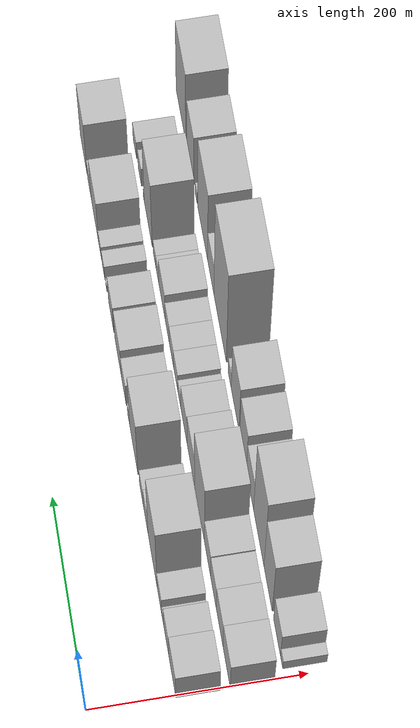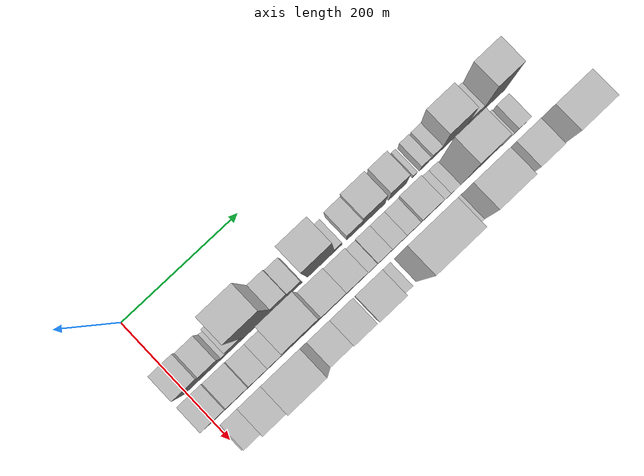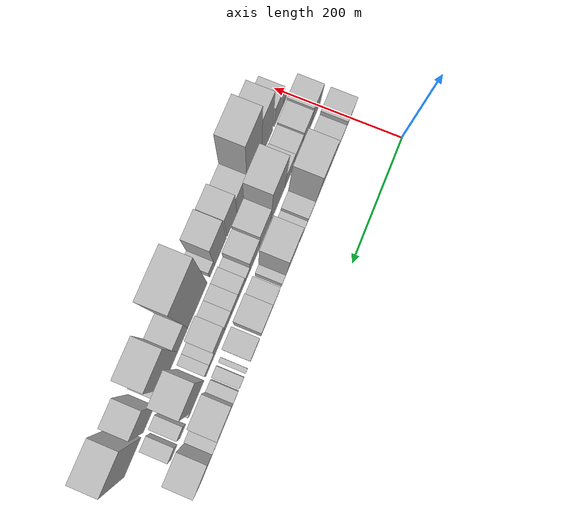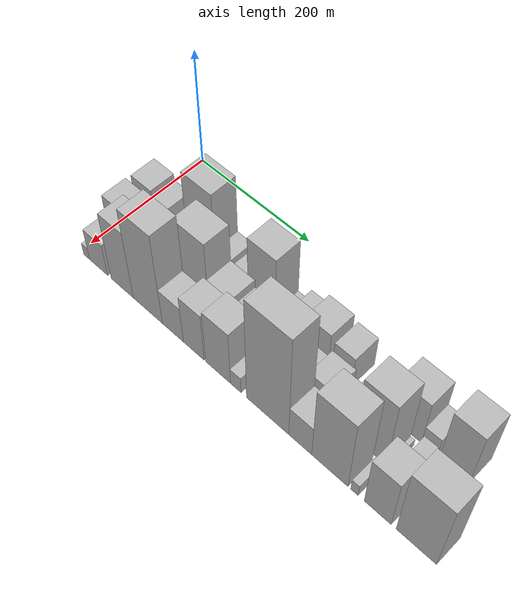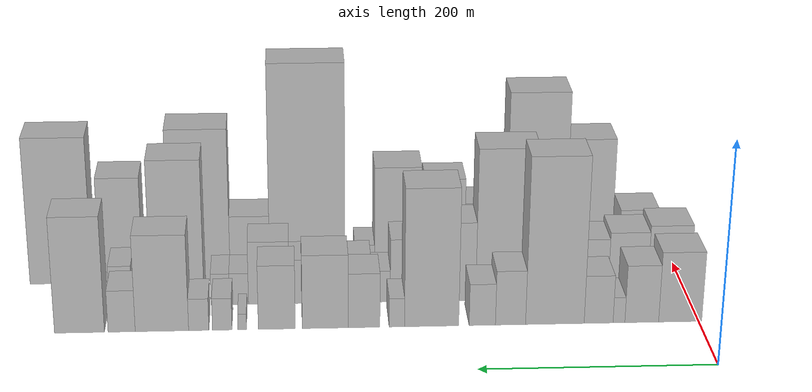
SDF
<sdf version="1.6">
 <world name="default">
  <model name="building_18">
   <static>1</static>
   <pose>100.0000 16.3628 0 0.000000 0.000000 0.000000</pose>
   <link name="link">
    <pose>0 0 33.00 0 0 0</pose>
    <collision name="collision"><geometry><box><size>40.0000 37.6113 66.0000</size></box></geometry></collision>
    <visual name="visual">
     <cast_shadows>0</cast_shadows>
     <geometry><box><size>40.0000 37.6113 66.0000</size></box></geometry>
     <material>
      <script>
       <uri>model://HANNAS_wall/materials/scripts</uri>
       <uri>model://HANNAS_wall/materials/textures</uri>
       <name>vrc/HANNAS_wall</name>
      </script>
     </material>
    </visual>
   </link>
  </model>
  <model name="building_19">
   <static>1</static>
   <pose>100.0000 49.8645 0 0.000000 0.000000 0.000000</pose>
   <link name="link">
    <pose>0 0 27.00 0 0 0</pose>
    <collision name="collision"><geometry><box><size>40.0000 29.3922 54.0000</size></box></geometry></collision>
    <visual name="visual">
     <cast_shadows>0</cast_shadows>
     <geometry><box><size>40.0000 29.3922 54.0000</size></box></geometry>
     <material>
      <script>
       <uri>model://HANNAS_wall/materials/scripts</uri>
       <uri>model://HANNAS_wall/materials/textures</uri>
       <name>vrc/HANNAS_wall</name>
      </script>
     </material>
    </visual>
   </link>
  </model>
  <model name="building_20">
   <static>1</static>
   <pose>100.0000 69.6994 0 0.000000 0.000000 0.000000</pose>
   <link name="link">
    <pose>0 0 12.00 0 0 0</pose>
    <collision name="collision"><geometry><box><size>40.0000 10.2777 24.0000</size></box></geometry></collision>
    <visual name="visual">
     <cast_shadows>0</cast_shadows>
     <geometry><box><size>40.0000 10.2777 24.0000</size></box></geometry>
     <material>
      <script>
       <uri>model://HANNAS_wall/materials/scripts</uri>
       <uri>model://HANNAS_wall/materials/textures</uri>
       <name>vrc/HANNAS_wall</name>
      </script>
     </material>
    </visual>
   </link>
  </model>
  <model name="building_21">
   <static>1</static>
   <pose>100.0000 87.3972 0 0.000000 0.000000 0.000000</pose>
   <link name="link">
    <pose>0 0 22.50 0 0 0</pose>
    <collision name="collision"><geometry><box><size>40.0000 25.1180 45.0000</size></box></geometry></collision>
    <visual name="visual">
     <cast_shadows>0</cast_shadows>
     <geometry><box><size>40.0000 25.1180 45.0000</size></box></geometry>
     <material>
      <script>
       <uri>model://HANNAS_wall/materials/scripts</uri>
       <uri>model://HANNAS_wall/materials/textures</uri>
       <name>vrc/HANNAS_wall</name>
      </script>
     </material>
    </visual>
   </link>
  </model>
  <model name="building_22">
   <static>1</static>
   <pose>100.0000 125.3921 0 0.000000 0.000000 0.000000</pose>
   <link name="link">
    <pose>0 0 78.00 0 0 0</pose>
    <collision name="collision"><geometry><box><size>40.0000 50.8718 156.0000</size></box></geometry></collision>
    <visual name="visual">
     <cast_shadows>0</cast_shadows>
     <geometry><box><size>40.0000 50.8718 156.0000</size></box></geometry>
     <material>
      <script>
       <uri>model://HANNAS_wall/materials/scripts</uri>
       <uri>model://HANNAS_wall/materials/textures</uri>
       <name>vrc/HANNAS_wall</name>
      </script>
     </material>
    </visual>
   </link>
  </model>
  <model name="building_23">
   <static>1</static>
   <pose>100.0000 163.8808 0 0.000000 0.000000 0.000000</pose>
   <link name="link">
    <pose>0 0 25.50 0 0 0</pose>
    <collision name="collision"><geometry><box><size>40.0000 26.1055 51.0000</size></box></geometry></collision>
    <visual name="visual">
     <cast_shadows>0</cast_shadows>
     <geometry><box><size>40.0000 26.1055 51.0000</size></box></geometry>
     <material>
      <script>
       <uri>model://HANNAS_wall/materials/scripts</uri>
       <uri>model://HANNAS_wall/materials/textures</uri>
       <name>vrc/HANNAS_wall</name>
      </script>
     </material>
    </visual>
   </link>
  </model>
  <model name="building_24">
   <static>1</static>
   <pose>100.0000 188.3058 0 0.000000 0.000000 0.000000</pose>
   <link name="link">
    <pose>0 0 19.50 0 0 0</pose>
    <collision name="collision"><geometry><box><size>40.0000 22.7445 39.0000</size></box></geometry></collision>
    <visual name="visual">
     <cast_shadows>0</cast_shadows>
     <geometry><box><size>40.0000 22.7445 39.0000</size></box></geometry>
     <material>
      <script>
       <uri>model://HANNAS_wall/materials/scripts</uri>
       <uri>model://HANNAS_wall/materials/textures</uri>
       <name>vrc/HANNAS_wall</name>
      </script>
     </material>
    </visual>
   </link>
  </model>
  <model name="building_25">
   <static>1</static>
   <pose>100.0000 232.1105 0 0.000000 0.000000 0.000000</pose>
   <link name="link">
    <pose>0 0 64.50 0 0 0</pose>
    <collision name="collision"><geometry><box><size>40.0000 46.8650 129.0000</size></box></geometry></collision>
    <visual name="visual">
     <cast_shadows>0</cast_shadows>
     <geometry><box><size>40.0000 46.8650 129.0000</size></box></geometry>
     <material>
      <script>
       <uri>model://HANNAS_wall/materials/scripts</uri>
       <uri>model://HANNAS_wall/materials/textures</uri>
       <name>vrc/HANNAS_wall</name>
      </script>
     </material>
    </visual>
   </link>
  </model>
  <model name="building_26">
   <static>1</static>
   <pose>100.0000 262.1391 0 0.000000 0.000000 0.000000</pose>
   <link name="link">
    <pose>0 0 13.50 0 0 0</pose>
    <collision name="collision"><geometry><box><size>40.0000 13.1922 27.0000</size></box></geometry></collision>
    <visual name="visual">
     <cast_shadows>0</cast_shadows>
     <geometry><box><size>40.0000 13.1922 27.0000</size></box></geometry>
     <material>
      <script>
       <uri>model://HANNAS_wall/materials/scripts</uri>
       <uri>model://HANNAS_wall/materials/textures</uri>
       <name>vrc/HANNAS_wall</name>
      </script>
     </material>
    </visual>
   </link>
  </model>
  <model name="building_27">
   <static>1</static>
   <pose>100.0000 290.3768 0 0.000000 0.000000 0.000000</pose>
   <link name="link">
    <pose>0 0 25.50 0 0 0</pose>
    <collision name="collision"><geometry><box><size>40.0000 27.2832 51.0000</size></box></geometry></collision>
    <visual name="visual">
     <cast_shadows>0</cast_shadows>
     <geometry><box><size>40.0000 27.2832 51.0000</size></box></geometry>
     <material>
      <script>
       <uri>model://HANNAS_wall/materials/scripts</uri>
       <uri>model://HANNAS_wall/materials/textures</uri>
       <name>vrc/HANNAS_wall</name>
      </script>
     </material>
    </visual>
   </link>
  </model>
  <model name="building_28">
   <static>1</static>
   <pose>100.0000 323.7900 0 0.000000 0.000000 0.000000</pose>
   <link name="link">
    <pose>0 0 34.50 0 0 0</pose>
    <collision name="collision"><geometry><box><size>40.0000 39.5433 69.0000</size></box></geometry></collision>
    <visual name="visual">
     <cast_shadows>0</cast_shadows>
     <geometry><box><size>40.0000 39.5433 69.0000</size></box></geometry>
     <material>
      <script>
       <uri>model://HANNAS_wall/materials/scripts</uri>
       <uri>model://HANNAS_wall/materials/textures</uri>
       <name>vrc/HANNAS_wall</name>
      </script>
     </material>
    </visual>
   </link>
  </model>
  <model name="building_29">
   <static>1</static>
   <pose>100.0000 365.4495 0 0.000000 0.000000 0.000000</pose>
   <link name="link">
    <pose>0 0 30.00 0 0 0</pose>
    <collision name="collision"><geometry><box><size>40.0000 31.7757 60.0000</size></box></geometry></collision>
    <visual name="visual">
     <cast_shadows>0</cast_shadows>
     <geometry><box><size>40.0000 31.7757 60.0000</size></box></geometry>
     <material>
      <script>
       <uri>model://HANNAS_wall/materials/scripts</uri>
       <uri>model://HANNAS_wall/materials/textures</uri>
       <name>vrc/HANNAS_wall</name>
      </script>
     </material>
    </visual>
   </link>
  </model>
  <model name="building_30">
   <static>1</static>
   <pose>100.0000 395.0855 0 0.000000 0.000000 0.000000</pose>
   <link name="link">
    <pose>0 0 7.50 0 0 0</pose>
    <collision name="collision"><geometry><box><size>40.0000 7.4964 15.0000</size></box></geometry></collision>
    <visual name="visual">
     <cast_shadows>0</cast_shadows>
     <geometry><box><size>40.0000 7.4964 15.0000</size></box></geometry>
     <material>
      <script>
       <uri>model://HANNAS_wall/materials/scripts</uri>
       <uri>model://HANNAS_wall/materials/textures</uri>
       <name>vrc/HANNAS_wall</name>
      </script>
     </material>
    </visual>
   </link>
  </model>
  <model name="building_31">
   <static>1</static>
   <pose>100.0000 412.2451 0 0.000000 0.000000 0.000000</pose>
   <link name="link">
    <pose>0 0 15.00 0 0 0</pose>
    <collision name="collision"><geometry><box><size>40.0000 16.8228 30.0000</size></box></geometry></collision>
    <visual name="visual">
     <cast_shadows>0</cast_shadows>
     <geometry><box><size>40.0000 16.8228 30.0000</size></box></geometry>
     <material>
      <script>
       <uri>model://HANNAS_wall/materials/scripts</uri>
       <uri>model://HANNAS_wall/materials/textures</uri>
       <name>vrc/HANNAS_wall</name>
      </script>
     </material>
    </visual>
   </link>
  </model>
  <model name="building_32">
   <static>1</static>
   <pose>100.0000 432.3515 0 0.000000 0.000000 0.000000</pose>
   <link name="link">
    <pose>0 0 15.00 0 0 0</pose>
    <collision name="collision"><geometry><box><size>40.0000 17.3901 30.0000</size></box></geometry></collision>
    <visual name="visual">
     <cast_shadows>0</cast_shadows>
     <geometry><box><size>40.0000 17.3901 30.0000</size></box></geometry>
     <material>
      <script>
       <uri>model://HANNAS_wall/materials/scripts</uri>
       <uri>model://HANNAS_wall/materials/textures</uri>
       <name>vrc/HANNAS_wall</name>
      </script>
     </material>
    </visual>
   </link>
  </model>
  <model name="building_33">
   <static>1</static>
   <pose>100.0000 463.8731 0 0.000000 0.000000 0.000000</pose>
   <link name="link">
    <pose>0 0 45.00 0 0 0</pose>
    <collision name="collision"><geometry><box><size>40.0000 45.6530 90.0000</size></box></geometry></collision>
    <visual name="visual">
     <cast_shadows>0</cast_shadows>
     <geometry><box><size>40.0000 45.6530 90.0000</size></box></geometry>
     <material>
      <script>
       <uri>model://HANNAS_wall/materials/scripts</uri>
       <uri>model://HANNAS_wall/materials/textures</uri>
       <name>vrc/HANNAS_wall</name>
      </script>
     </material>
    </visual>
   </link>
  </model>
  <model name="building_34">
   <static>1</static>
   <pose>100.0000 498.3112 0 0.000000 0.000000 0.000000</pose>
   <link name="link">
    <pose>0 0 19.50 0 0 0</pose>
    <collision name="collision"><geometry><box><size>40.0000 23.2232 39.0000</size></box></geometry></collision>
    <visual name="visual">
     <cast_shadows>0</cast_shadows>
     <geometry><box><size>40.0000 23.2232 39.0000</size></box></geometry>
     <material>
      <script>
       <uri>model://HANNAS_wall/materials/scripts</uri>
       <uri>model://HANNAS_wall/materials/textures</uri>
       <name>vrc/HANNAS_wall</name>
      </script>
     </material>
    </visual>
   </link>
  </model>
  <model name="building_35">
   <static>1</static>
   <pose>100.0000 534.2244 0 0.000000 0.000000 0.000000</pose>
   <link name="link">
    <pose>0 0 54.00 0 0 0</pose>
    <collision name="collision"><geometry><box><size>40.0000 42.6031 108.0000</size></box></geometry></collision>
    <visual name="visual">
     <cast_shadows>0</cast_shadows>
     <geometry><box><size>40.0000 42.6031 108.0000</size></box></geometry>
     <material>
      <script>
       <uri>model://HANNAS_wall/materials/scripts</uri>
       <uri>model://HANNAS_wall/materials/textures</uri>
       <name>vrc/HANNAS_wall</name>
      </script>
     </material>
    </visual>
   </link>
  </model>
  <model name="building_54">
   <static>1</static>
   <pose>149.0000 17.3998 0 0.000000 0.000000 0.000000</pose>
   <link name="link">
    <pose>0 0 34.50 0 0 0</pose>
    <collision name="collision"><geometry><box><size>40.0000 38.1574 69.0000</size></box></geometry></collision>
    <visual name="visual">
     <cast_shadows>0</cast_shadows>
     <geometry><box><size>40.0000 38.1574 69.0000</size></box></geometry>
     <material>
      <script>
       <uri>model://HANNAS_wall/materials/scripts</uri>
       <uri>model://HANNAS_wall/materials/textures</uri>
       <name>vrc/HANNAS_wall</name>
      </script>
     </material>
    </visual>
   </link>
  </model>
  <model name="building_55">
   <static>1</static>
   <pose>149.0000 54.0805 0 0.000000 0.000000 0.000000</pose>
   <link name="link">
    <pose>0 0 31.50 0 0 0</pose>
    <collision name="collision"><geometry><box><size>40.0000 35.2041 63.0000</size></box></geometry></collision>
    <visual name="visual">
     <cast_shadows>0</cast_shadows>
     <geometry><box><size>40.0000 35.2041 63.0000</size></box></geometry>
     <material>
      <script>
       <uri>model://HANNAS_wall/materials/scripts</uri>
       <uri>model://HANNAS_wall/materials/textures</uri>
       <name>vrc/HANNAS_wall</name>
      </script>
     </material>
    </visual>
   </link>
  </model>
  <model name="building_56">
   <static>1</static>
   <pose>149.0000 87.0612 0 0.000000 0.000000 0.000000</pose>
   <link name="link">
    <pose>0 0 28.50 0 0 0</pose>
    <collision name="collision"><geometry><box><size>40.0000 30.7572 57.0000</size></box></geometry></collision>
    <visual name="visual">
     <cast_shadows>0</cast_shadows>
     <geometry><box><size>40.0000 30.7572 57.0000</size></box></geometry>
     <material>
      <script>
       <uri>model://HANNAS_wall/materials/scripts</uri>
       <uri>model://HANNAS_wall/materials/textures</uri>
       <name>vrc/HANNAS_wall</name>
      </script>
     </material>
    </visual>
   </link>
  </model>
  <model name="building_57">
   <static>1</static>
   <pose>149.0000 119.1401 0 0.000000 0.000000 0.000000</pose>
   <link name="link">
    <pose>0 0 30.00 0 0 0</pose>
    <collision name="collision"><geometry><box><size>40.0000 33.4005 60.0000</size></box></geometry></collision>
    <visual name="visual">
     <cast_shadows>0</cast_shadows>
     <geometry><box><size>40.0000 33.4005 60.0000</size></box></geometry>
     <material>
      <script>
       <uri>model://HANNAS_wall/materials/scripts</uri>
       <uri>model://HANNAS_wall/materials/textures</uri>
       <name>vrc/HANNAS_wall</name>
      </script>
     </material>
    </visual>
   </link>
  </model>
  <model name="building_58">
   <static>1</static>
   <pose>149.0000 162.5982 0 0.000000 0.000000 0.000000</pose>
   <link name="link">
    <pose>0 0 72.00 0 0 0</pose>
    <collision name="collision"><geometry><box><size>40.0000 53.5157 144.0000</size></box></geometry></collision>
    <visual name="visual">
     <cast_shadows>0</cast_shadows>
     <geometry><box><size>40.0000 53.5157 144.0000</size></box></geometry>
     <material>
      <script>
       <uri>model://HANNAS_wall/materials/scripts</uri>
       <uri>model://HANNAS_wall/materials/textures</uri>
       <name>vrc/HANNAS_wall</name>
      </script>
     </material>
    </visual>
   </link>
  </model>
  <model name="building_59">
   <static>1</static>
   <pose>149.0000 209.6741 0 0.000000 0.000000 0.000000</pose>
   <link name="link">
    <pose>0 0 37.50 0 0 0</pose>
    <collision name="collision"><geometry><box><size>40.0000 40.6362 75.0000</size></box></geometry></collision>
    <visual name="visual">
     <cast_shadows>0</cast_shadows>
     <geometry><box><size>40.0000 40.6362 75.0000</size></box></geometry>
     <material>
      <script>
       <uri>model://HANNAS_wall/materials/scripts</uri>
       <uri>model://HANNAS_wall/materials/textures</uri>
       <name>vrc/HANNAS_wall</name>
      </script>
     </material>
    </visual>
   </link>
  </model>
  <model name="building_60">
   <static>1</static>
   <pose>149.0000 247.5498 0 0.000000 0.000000 0.000000</pose>
   <link name="link">
    <pose>0 0 30.00 0 0 0</pose>
    <collision name="collision"><geometry><box><size>40.0000 35.1152 60.0000</size></box></geometry></collision>
    <visual name="visual">
     <cast_shadows>0</cast_shadows>
     <geometry><box><size>40.0000 35.1152 60.0000</size></box></geometry>
     <material>
      <script>
       <uri>model://HANNAS_wall/materials/scripts</uri>
       <uri>model://HANNAS_wall/materials/textures</uri>
       <name>vrc/HANNAS_wall</name>
      </script>
     </material>
    </visual>
   </link>
  </model>
  <model name="building_61">
   <static>1</static>
   <pose>149.0000 273.6601 0 0.000000 0.000000 0.000000</pose>
   <link name="link">
    <pose>0 0 15.00 0 0 0</pose>
    <collision name="collision"><geometry><box><size>40.0000 17.1055 30.0000</size></box></geometry></collision>
    <visual name="visual">
     <cast_shadows>0</cast_shadows>
     <geometry><box><size>40.0000 17.1055 30.0000</size></box></geometry>
     <material>
      <script>
       <uri>model://HANNAS_wall/materials/scripts</uri>
       <uri>model://HANNAS_wall/materials/textures</uri>
       <name>vrc/HANNAS_wall</name>
      </script>
     </material>
    </visual>
   </link>
  </model>
  <model name="building_62">
   <static>1</static>
   <pose>149.0000 294.3569 0 0.000000 0.000000 0.000000</pose>
   <link name="link">
    <pose>0 0 21.00 0 0 0</pose>
    <collision name="collision"><geometry><box><size>40.0000 24.2881 42.0000</size></box></geometry></collision>
    <visual name="visual">
     <cast_shadows>0</cast_shadows>
     <geometry><box><size>40.0000 24.2881 42.0000</size></box></geometry>
     <material>
      <script>
       <uri>model://HANNAS_wall/materials/scripts</uri>
       <uri>model://HANNAS_wall/materials/textures</uri>
       <name>vrc/HANNAS_wall</name>
      </script>
     </material>
    </visual>
   </link>
  </model>
  <model name="building_63">
   <static>1</static>
   <pose>149.0000 318.6887 0 0.000000 0.000000 0.000000</pose>
   <link name="link">
    <pose>0 0 21.00 0 0 0</pose>
    <collision name="collision"><geometry><box><size>40.0000 24.3755 42.0000</size></box></geometry></collision>
    <visual name="visual">
     <cast_shadows>0</cast_shadows>
     <geometry><box><size>40.0000 24.3755 42.0000</size></box></geometry>
     <material>
      <script>
       <uri>model://HANNAS_wall/materials/scripts</uri>
       <uri>model://HANNAS_wall/materials/textures</uri>
       <name>vrc/HANNAS_wall</name>
      </script>
     </material>
    </visual>
   </link>
  </model>
  <model name="building_64">
   <static>1</static>
   <pose>149.0000 342.6336 0 0.000000 0.000000 0.000000</pose>
   <link name="link">
    <pose>0 0 21.00 0 0 0</pose>
    <collision name="collision"><geometry><box><size>40.0000 23.5143 42.0000</size></box></geometry></collision>
    <visual name="visual">
     <cast_shadows>0</cast_shadows>
     <geometry><box><size>40.0000 23.5143 42.0000</size></box></geometry>
     <material>
      <script>
       <uri>model://HANNAS_wall/materials/scripts</uri>
       <uri>model://HANNAS_wall/materials/textures</uri>
       <name>vrc/HANNAS_wall</name>
      </script>
     </material>
    </visual>
   </link>
  </model>
  <model name="building_65">
   <static>1</static>
   <pose>149.0000 372.3625 0 0.000000 0.000000 0.000000</pose>
   <link name="link">
    <pose>0 0 30.00 0 0 0</pose>
    <collision name="collision"><geometry><box><size>40.0000 35.9435 60.0000</size></box></geometry></collision>
    <visual name="visual">
     <cast_shadows>0</cast_shadows>
     <geometry><box><size>40.0000 35.9435 60.0000</size></box></geometry>
     <material>
      <script>
       <uri>model://HANNAS_wall/materials/scripts</uri>
       <uri>model://HANNAS_wall/materials/textures</uri>
       <name>vrc/HANNAS_wall</name>
      </script>
     </material>
    </visual>
   </link>
  </model>
  <model name="building_66">
   <static>1</static>
   <pose>149.0000 398.7311 0 0.000000 0.000000 0.000000</pose>
   <link name="link">
    <pose>0 0 15.00 0 0 0</pose>
    <collision name="collision"><geometry><box><size>40.0000 16.7937 30.0000</size></box></geometry></collision>
    <visual name="visual">
     <cast_shadows>0</cast_shadows>
     <geometry><box><size>40.0000 16.7937 30.0000</size></box></geometry>
     <material>
      <script>
       <uri>model://HANNAS_wall/materials/scripts</uri>
       <uri>model://HANNAS_wall/materials/textures</uri>
       <name>vrc/HANNAS_wall</name>
      </script>
     </material>
    </visual>
   </link>
  </model>
  <model name="building_67">
   <static>1</static>
   <pose>149.0000 415.1891 0 0.000000 0.000000 0.000000</pose>
   <link name="link">
    <pose>0 0 15.00 0 0 0</pose>
    <collision name="collision"><geometry><box><size>40.0000 16.1221 30.0000</size></box></geometry></collision>
    <visual name="visual">
     <cast_shadows>0</cast_shadows>
     <geometry><box><size>40.0000 16.1221 30.0000</size></box></geometry>
     <material>
      <script>
       <uri>model://HANNAS_wall/materials/scripts</uri>
       <uri>model://HANNAS_wall/materials/textures</uri>
       <name>vrc/HANNAS_wall</name>
      </script>
     </material>
    </visual>
   </link>
  </model>
  <model name="building_68">
   <static>1</static>
   <pose>149.0000 452.6237 0 0.000000 0.000000 0.000000</pose>
   <link name="link">
    <pose>0 0 69.00 0 0 0</pose>
    <collision name="collision"><geometry><box><size>40.0000 46.7470 138.0000</size></box></geometry></collision>
    <visual name="visual">
     <cast_shadows>0</cast_shadows>
     <geometry><box><size>40.0000 46.7470 138.0000</size></box></geometry>
     <material>
      <script>
       <uri>model://HANNAS_wall/materials/scripts</uri>
       <uri>model://HANNAS_wall/materials/textures</uri>
       <name>vrc/HANNAS_wall</name>
      </script>
     </material>
    </visual>
   </link>
  </model>
  <model name="building_69">
   <static>1</static>
   <pose>149.0000 479.2712 0 0.000000 0.000000 0.000000</pose>
   <link name="link">
    <pose>0 0 7.50 0 0 0</pose>
    <collision name="collision"><geometry><box><size>40.0000 6.5481 15.0000</size></box></geometry></collision>
    <visual name="visual">
     <cast_shadows>0</cast_shadows>
     <geometry><box><size>40.0000 6.5481 15.0000</size></box></geometry>
     <material>
      <script>
       <uri>model://HANNAS_wall/materials/scripts</uri>
       <uri>model://HANNAS_wall/materials/textures</uri>
       <name>vrc/HANNAS_wall</name>
      </script>
     </material>
    </visual>
   </link>
  </model>
  <model name="building_70">
   <static>1</static>
   <pose>149.0000 502.5704 0 0.000000 0.000000 0.000000</pose>
   <link name="link">
    <pose>0 0 19.50 0 0 0</pose>
    <collision name="collision"><geometry><box><size>40.0000 20.0504 39.0000</size></box></geometry></collision>
    <visual name="visual">
     <cast_shadows>0</cast_shadows>
     <geometry><box><size>40.0000 20.0504 39.0000</size></box></geometry>
     <material>
      <script>
       <uri>model://HANNAS_wall/materials/scripts</uri>
       <uri>model://HANNAS_wall/materials/textures</uri>
       <name>vrc/HANNAS_wall</name>
      </script>
     </material>
    </visual>
   </link>
  </model>
  <model name="building_71">
   <static>1</static>
   <pose>149.0000 532.3812 0 0.000000 0.000000 0.000000</pose>
   <link name="link">
    <pose>0 0 18.00 0 0 0</pose>
    <collision name="collision"><geometry><box><size>40.0000 21.5711 36.0000</size></box></geometry></collision>
    <visual name="visual">
     <cast_shadows>0</cast_shadows>
     <geometry><box><size>40.0000 21.5711 36.0000</size></box></geometry>
     <material>
      <script>
       <uri>model://HANNAS_wall/materials/scripts</uri>
       <uri>model://HANNAS_wall/materials/textures</uri>
       <name>vrc/HANNAS_wall</name>
      </script>
     </material>
    </visual>
   </link>
  </model>
  <model name="building_86">
   <static>1</static>
   <pose>198.0000 13.5657 0 0.000000 0.000000 0.000000</pose>
   <link name="link">
    <pose>0 0 12.00 0 0 0</pose>
    <collision name="collision"><geometry><box><size>40.0000 11.7139 24.0000</size></box></geometry></collision>
    <visual name="visual">
     <cast_shadows>0</cast_shadows>
     <geometry><box><size>40.0000 11.7139 24.0000</size></box></geometry>
     <material>
      <script>
       <uri>model://HANNAS_wall/materials/scripts</uri>
       <uri>model://HANNAS_wall/materials/textures</uri>
       <name>vrc/HANNAS_wall</name>
      </script>
     </material>
    </visual>
   </link>
  </model>
  <model name="building_87">
   <static>1</static>
   <pose>198.0000 36.9818 0 0.000000 0.000000 0.000000</pose>
   <link name="link">
    <pose>0 0 31.50 0 0 0</pose>
    <collision name="collision"><geometry><box><size>40.0000 35.1182 63.0000</size></box></geometry></collision>
    <visual name="visual">
     <cast_shadows>0</cast_shadows>
     <geometry><box><size>40.0000 35.1182 63.0000</size></box></geometry>
     <material>
      <script>
       <uri>model://HANNAS_wall/materials/scripts</uri>
       <uri>model://HANNAS_wall/materials/textures</uri>
       <name>vrc/HANNAS_wall</name>
      </script>
     </material>
    </visual>
   </link>
  </model>
  <model name="building_88">
   <static>1</static>
   <pose>198.0000 82.6514 0 0.000000 0.000000 0.000000</pose>
   <link name="link">
    <pose>0 0 66.00 0 0 0</pose>
    <collision name="collision"><geometry><box><size>40.0000 42.2212 132.0000</size></box></geometry></collision>
    <visual name="visual">
     <cast_shadows>0</cast_shadows>
     <geometry><box><size>40.0000 42.2212 132.0000</size></box></geometry>
     <material>
      <script>
       <uri>model://HANNAS_wall/materials/scripts</uri>
       <uri>model://HANNAS_wall/materials/textures</uri>
       <name>vrc/HANNAS_wall</name>
      </script>
     </material>
    </visual>
   </link>
  </model>
  <model name="building_89">
   <static>1</static>
   <pose>198.0000 130.7213 0 0.000000 0.000000 0.000000</pose>
   <link name="link">
    <pose>0 0 88.50 0 0 0</pose>
    <collision name="collision"><geometry><box><size>40.0000 53.9185 177.0000</size></box></geometry></collision>
    <visual name="visual">
     <cast_shadows>0</cast_shadows>
     <geometry><box><size>40.0000 53.9185 177.0000</size></box></geometry>
     <material>
      <script>
       <uri>model://HANNAS_wall/materials/scripts</uri>
       <uri>model://HANNAS_wall/materials/textures</uri>
       <name>vrc/HANNAS_wall</name>
      </script>
     </material>
    </visual>
   </link>
  </model>
  <model name="building_90">
   <static>1</static>
   <pose>198.0000 176.4748 0 0.000000 0.000000 0.000000</pose>
   <link name="link">
    <pose>0 0 36.00 0 0 0</pose>
    <collision name="collision"><geometry><box><size>40.0000 37.5886 72.0000</size></box></geometry></collision>
    <visual name="visual">
     <cast_shadows>0</cast_shadows>
     <geometry><box><size>40.0000 37.5886 72.0000</size></box></geometry>
     <material>
      <script>
       <uri>model://HANNAS_wall/materials/scripts</uri>
       <uri>model://HANNAS_wall/materials/textures</uri>
       <name>vrc/HANNAS_wall</name>
      </script>
     </material>
    </visual>
   </link>
  </model>
  <model name="building_91">
   <static>1</static>
   <pose>198.0000 213.4300 0 0.000000 0.000000 0.000000</pose>
   <link name="link">
    <pose>0 0 48.00 0 0 0</pose>
    <collision name="collision"><geometry><box><size>40.0000 36.3218 96.0000</size></box></geometry></collision>
    <visual name="visual">
     <cast_shadows>0</cast_shadows>
     <geometry><box><size>40.0000 36.3218 96.0000</size></box></geometry>
     <material>
      <script>
       <uri>model://HANNAS_wall/materials/scripts</uri>
       <uri>model://HANNAS_wall/materials/textures</uri>
       <name>vrc/HANNAS_wall</name>
      </script>
     </material>
    </visual>
   </link>
  </model>
  <model name="building_92">
   <static>1</static>
   <pose>198.0000 255.6811 0 0.000000 0.000000 0.000000</pose>
   <link name="link">
    <pose>0 0 54.00 0 0 0</pose>
    <collision name="collision"><geometry><box><size>40.0000 42.1804 108.0000</size></box></geometry></collision>
    <visual name="visual">
     <cast_shadows>0</cast_shadows>
     <geometry><box><size>40.0000 42.1804 108.0000</size></box></geometry>
     <material>
      <script>
       <uri>model://HANNAS_wall/materials/scripts</uri>
       <uri>model://HANNAS_wall/materials/textures</uri>
       <name>vrc/HANNAS_wall</name>
      </script>
     </material>
    </visual>
   </link>
  </model>
  <model name="building_93">
   <static>1</static>
   <pose>198.0000 285.6338 0 0.000000 0.000000 0.000000</pose>
   <link name="link">
    <pose>0 0 16.50 0 0 0</pose>
    <collision name="collision"><geometry><box><size>40.0000 17.7250 33.0000</size></box></geometry></collision>
    <visual name="visual">
     <cast_shadows>0</cast_shadows>
     <geometry><box><size>40.0000 17.7250 33.0000</size></box></geometry>
     <material>
      <script>
       <uri>model://HANNAS_wall/materials/scripts</uri>
       <uri>model://HANNAS_wall/materials/textures</uri>
       <name>vrc/HANNAS_wall</name>
      </script>
     </material>
    </visual>
   </link>
  </model>
  <model name="building_94">
   <static>1</static>
   <pose>198.0000 337.5864 0 0.000000 0.000000 0.000000</pose>
   <link name="link">
    <pose>0 0 103.50 0 0 0</pose>
    <collision name="collision"><geometry><box><size>40.0000 68.1802 207.0000</size></box></geometry></collision>
    <visual name="visual">
     <cast_shadows>0</cast_shadows>
     <geometry><box><size>40.0000 68.1802 207.0000</size></box></geometry>
     <material>
      <script>
       <uri>model://HANNAS_wall/materials/scripts</uri>
       <uri>model://HANNAS_wall/materials/textures</uri>
       <name>vrc/HANNAS_wall</name>
      </script>
     </material>
    </visual>
   </link>
  </model>
  <model name="building_95">
   <static>1</static>
   <pose>198.0000 389.5168 0 0.000000 0.000000 0.000000</pose>
   <link name="link">
    <pose>0 0 31.50 0 0 0</pose>
    <collision name="collision"><geometry><box><size>40.0000 35.6807 63.0000</size></box></geometry></collision>
    <visual name="visual">
     <cast_shadows>0</cast_shadows>
     <geometry><box><size>40.0000 35.6807 63.0000</size></box></geometry>
     <material>
      <script>
       <uri>model://HANNAS_wall/materials/scripts</uri>
       <uri>model://HANNAS_wall/materials/textures</uri>
       <name>vrc/HANNAS_wall</name>
      </script>
     </material>
    </visual>
   </link>
  </model>
  <model name="building_96">
   <static>1</static>
   <pose>198.0000 434.8635 0 0.000000 0.000000 0.000000</pose>
   <link name="link">
    <pose>0 0 73.50 0 0 0</pose>
    <collision name="collision"><geometry><box><size>40.0000 55.0126 147.0000</size></box></geometry></collision>
    <visual name="visual">
     <cast_shadows>0</cast_shadows>
     <geometry><box><size>40.0000 55.0126 147.0000</size></box></geometry>
     <material>
      <script>
       <uri>model://HANNAS_wall/materials/scripts</uri>
       <uri>model://HANNAS_wall/materials/textures</uri>
       <name>vrc/HANNAS_wall</name>
      </script>
     </material>
    </visual>
   </link>
  </model>
  <model name="building_97">
   <static>1</static>
   <pose>198.0000 471.7372 0 0.000000 0.000000 0.000000</pose>
   <link name="link">
    <pose>0 0 12.00 0 0 0</pose>
    <collision name="collision"><geometry><box><size>40.0000 10.7349 24.0000</size></box></geometry></collision>
    <visual name="visual">
     <cast_shadows>0</cast_shadows>
     <geometry><box><size>40.0000 10.7349 24.0000</size></box></geometry>
     <material>
      <script>
       <uri>model://HANNAS_wall/materials/scripts</uri>
       <uri>model://HANNAS_wall/materials/textures</uri>
       <name>vrc/HANNAS_wall</name>
      </script>
     </material>
    </visual>
   </link>
  </model>
  <model name="building_98">
   <static>1</static>
   <pose>198.0000 505.4465 0 0.000000 0.000000 0.000000</pose>
   <link name="link">
    <pose>0 0 51.00 0 0 0</pose>
    <collision name="collision"><geometry><box><size>40.0000 38.6837 102.0000</size></box></geometry></collision>
    <visual name="visual">
     <cast_shadows>0</cast_shadows>
     <geometry><box><size>40.0000 38.6837 102.0000</size></box></geometry>
     <material>
      <script>
       <uri>model://HANNAS_wall/materials/scripts</uri>
       <uri>model://HANNAS_wall/materials/textures</uri>
       <name>vrc/HANNAS_wall</name>
      </script>
     </material>
    </visual>
   </link>
  </model>
  <model name="building_99">
   <static>1</static>
   <pose>198.0000 559.7182 0 0.000000 0.000000 0.000000</pose>
   <link name="link">
    <pose>0 0 70.50 0 0 0</pose>
    <collision name="collision"><geometry><box><size>40.0000 55.8595 141.0000</size></box></geometry></collision>
    <visual name="visual">
     <cast_shadows>0</cast_shadows>
     <geometry><box><size>40.0000 55.8595 141.0000</size></box></geometry>
     <material>
      <script>
       <uri>model://HANNAS_wall/materials/scripts</uri>
       <uri>model://HANNAS_wall/materials/textures</uri>
       <name>vrc/HANNAS_wall</name>
      </script>
     </material>
    </visual>
   </link>
  </model>
 </world>
</sdf>
